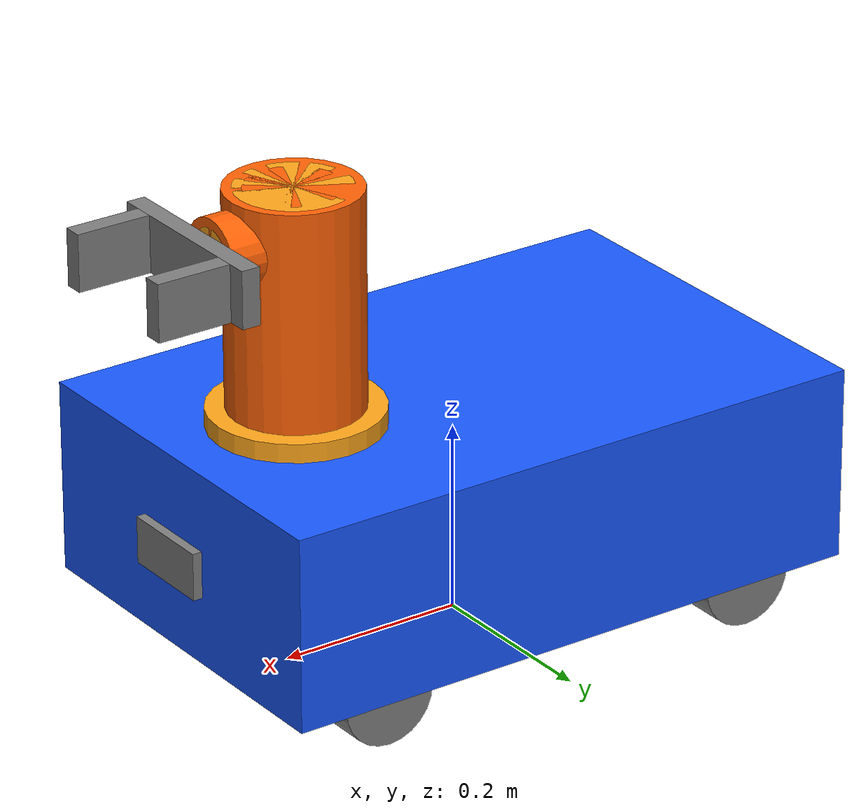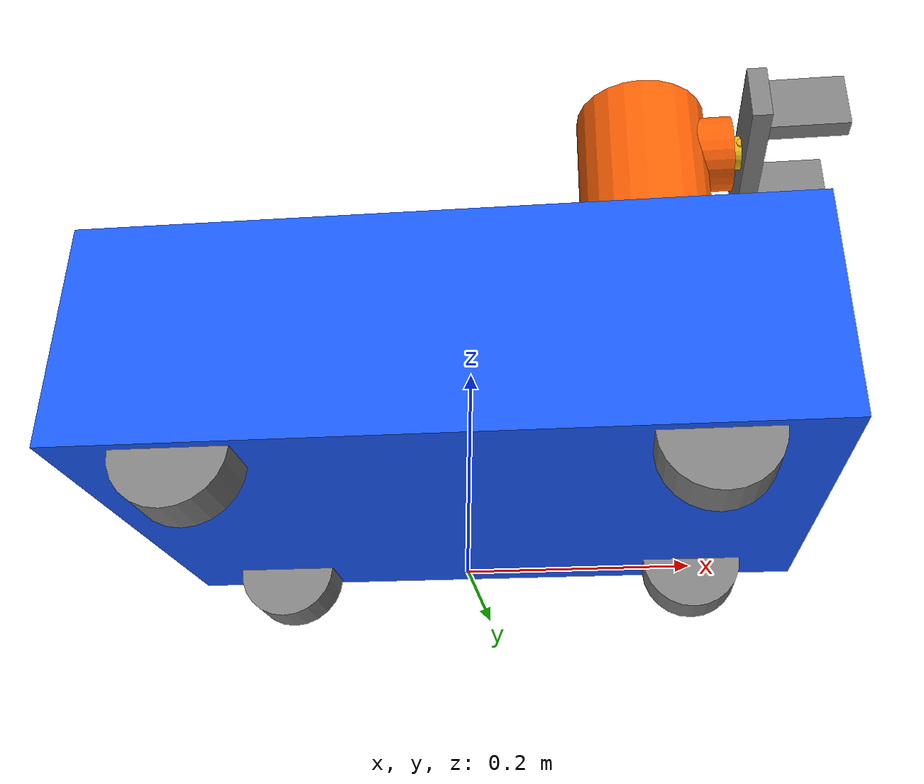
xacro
<?xml version="1.0"?>
<robot name="libot" xmlns:xacro="http://www.ros.org/wiki/xacro">

    <!-- 'common_properties' should come first so other files have access to it -->
    <xacro:include filename="common_properties.xacro" />
    <xacro:include filename="libot_base.xacro" />
    <xacro:include filename="libot_base_gazebo.xacro" />
    <xacro:include filename="camera.xacro" />
    <xacro:include filename="standalone_arm.urdf.xacro" />

    <joint name="libot_arm_base_joint" type="continuous">
        <parent link="base_link" />
        <child link="arm_base_link" />
        <origin xyz="${base_length / 3.5} 0 ${base_height}" rpy="0 0 0"/>
        <axis xyz="0 0 1" />
        <limit effort="100" velocity="100" />
        <dynamics friction="0.3" damping="0.3" />
    </joint>

</robot>

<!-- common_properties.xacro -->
<robot xmlns:xacro="http://www.ros.org/wiki/xacro">

    <material name="blue">
        <color rgba="0.10 0.35 1.0 1" /> <!-- r g b alpha -->
    </material>

    <material name="grey">
        <color rgba="0.5 0.5 0.5 1" /> <!-- r g b alpha -->
    </material>

    <material name="orange">
        <color rgba="1.00 0.38 0.02 1" /> <!-- r g b alpha -->
    </material>

    <material name="yellow">
        <color rgba="1.0 0.65 0.1  1" /> <!-- r g b alpha -->
    </material>

    <material name="greenish">
        <color rgba="0.9 0.75 0.1  1" /> <!-- r g b alpha -->
    </material>

    <xacro:macro name="box_inertia" params="m x y z o_xyz o_rpy">
        <inertial>
            <mass value="${m}" />
            <origin xyz="${o_xyz}" rpy="${o_rpy}" />
            <inertia ixx="${(m/12) * (y*y + z*z)}" ixy="0" ixz="0"
                     iyy="${(m/12) * (x*x + z*z)}" iyz="0"
                     izz="${(m/12) * (y*y + x*x)}" />
        </inertial>
    </xacro:macro>

    <xacro:macro name="cylinder_inertia" params="m r h o_xyz o_rpy">
        <inertial>
            <mass value="${m}" />
            <origin xyz="${o_xyz}" rpy="${o_rpy}" />
            <inertia ixx="${(m/12) * (3*r*r + h*h)}" ixy="0" ixz="0"
                     iyy="${(m/12) * (3*r*r + h*h)}" iyz="0"
                     izz="${(m/2) * (r*r)}" />
        </inertial>
    </xacro:macro>

    <xacro:macro name="sphere_inertia" params="m r o_xyz o_rpy">
        <inertial>
            <mass value="${m}" />
            <origin xyz="${o_xyz}" rpy="${o_rpy}" />
            <inertia ixx="${(2/5) * m * r*r}" ixy="0" ixz="0"
                     iyy="${(2/5) * m * r*r}" iyz="0"
                     izz="${(2/5) * m * r*r}" />
        </inertial>
    </xacro:macro>

</robot>

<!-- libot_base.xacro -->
<robot xmlns:xacro="http://www.ros.org/wiki/xacro">

    <!-- Body Variables -->
    <xacro:property name="base_length" value="0.65" />
    <xacro:property name="base_width" value="0.425" />
    <xacro:property name="base_height" value="0.205" />
    <xacro:property name="wheel_radius" value="0.05" />
    <xacro:property name="wheel_length" value="0.05" />
    <xacro:property name="caster_radius" value="${wheel_radius / 2.0}" />

    <!-- Link Definitions  -->
    <link name="base_footprint" />

    <link name="base_link">
        <visual>
            <geometry>
                <box size="${base_length} ${base_width} ${base_height}" />
            </geometry>
            <origin xyz="0 0 ${base_height / 2.0}" rpy="0 0 0" />
            <material name="blue" />
        </visual>
        <collision>
            <geometry>
                <box size="${base_length} ${base_width} ${base_height}" />
            </geometry>
            <origin xyz="0 0 ${base_height / 2.0}" rpy="0 0 0" />
        </collision>
        <xacro:box_inertia m="5.0" x="${base_length}" y="${base_width}" z="${base_height}"
                        o_xyz="0 0 ${base_height / 2.0}" o_rpy="0 0 0" />
    </link>

    <xacro:macro name="wheel_link" params="prefix">
        <link name="${prefix}_wheel_link">
            <visual>
                <geometry>
                    <cylinder radius="${wheel_radius}" length="${wheel_length}" />
                </geometry>
                <origin xyz="0 0 0" rpy="0 0 0" />
                <material name="grey" />
            </visual>
            <collision>
                <geometry>
                    <cylinder radius="${wheel_radius}" length="${wheel_length}"/>
                </geometry>
                <origin xyz="0 0 0" rpy="0 0 0" />
            </collision>
        <xacro:cylinder_inertia m="1.0" r="${wheel_radius}" h="${wheel_length}"
                        o_xyz="0 0 0" o_rpy="0 0 0" />
        </link>
    </xacro:macro>

    <xacro:wheel_link prefix="back_right" />
    <xacro:wheel_link prefix="back_left" />
    <xacro:wheel_link prefix="front_right" />
    <xacro:wheel_link prefix="front_left" />

    <!-- Joint Definitions -->
    <joint name="base_joint" type="fixed">
        <parent link="base_footprint" />
        <child link="base_link" />
        <origin xyz="0 0 ${wheel_radius}" rpy="0 0 0"/>
    </joint>

    <joint name="base_back_right_wheel_joint" type="continuous">
        <parent link="base_link" />
        <child link="back_right_wheel_link" />
        <origin xyz="${-base_length / 3.0} ${-(base_width - wheel_length - 0.02) / 2.0} 0" rpy="-${pi / 2.0} 0 0"/>
        <axis xyz="0 0 1" />
    </joint>

    <joint name="base_back_left_wheel_joint" type="continuous">
        <parent link="base_link" />
        <child link="back_left_wheel_link" />
        <origin xyz="${-base_length / 3.0} ${(base_width - wheel_length - 0.02) / 2.0} 0" rpy="-${pi / 2.0} 0 0"/>
        <axis xyz="0 0 1" />
    </joint>

    <joint name="base_front_right_wheel_joint" type="continuous">
        <parent link="base_link" />
        <child link="front_right_wheel_link" />
        <origin xyz="${base_length / 3.0} ${-(base_width - wheel_length - 0.02) / 2.0} 0" rpy="-${pi / 2.0} 0 0"/>
        <axis xyz="0 0 1" />
    </joint>

    <joint name="base_front_left_wheel_joint" type="continuous">
        <parent link="base_link" />
        <child link="front_left_wheel_link" />
        <origin xyz="${base_length / 3.0} ${(base_width - wheel_length - 0.02) / 2.0} 0" rpy="-${pi / 2.0} 0 0"/>
        <axis xyz="0 0 1" />
    </joint>

</robot>

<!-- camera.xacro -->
<robot xmlns:xacro="http://www.ros.org/wiki/xacro">

    <xacro:property name="camera_length" value="0.01" />
    <xacro:property name="camera_width" value="0.1" />
    <xacro:property name="camera_height" value="0.05" />

    <link name="camera_link">
        <visual>
            <geometry>
                <box size="${camera_length} ${camera_width} ${camera_height}" />
            </geometry>
            <origin xyz="${camera_length / 2.0} 0 0" rpy="0 0 0" />
            <material name="grey" />
        </visual>
        <collision>
            <geometry>
                <box size="${camera_length} ${camera_width} ${camera_height}" />
            </geometry>
        </collision>
        <xacro:box_inertia m="0.1" x="${camera_length}" y="${camera_width}" z="${camera_height}"
                        o_xyz="${camera_length / 2.0} 0 0" o_rpy="0 0 0" />
    </link>

    <link name="camera_link_optical">
    </link>

    <joint name="base_camera_joint" type="fixed">
        <parent link="base_link" />
        <child link="camera_link" />
        <origin xyz="${base_length / 2.0 + 0.005} 0 ${base_height / 2.0}" rpy="0 0 0"/>
    </joint>

    <!-- generate an optical frame
    http://www.ros.org/reps/rep-0103.html#suffix-frames
    so that ros and opencv can operate on the camera frame correctly
    -->
    <joint name="camera_optical_joint" type="fixed">
        <!-- these values have to be these values otherwise the gazebo camera
            image won't be aligned properly with the frame it is supposedly
            originating from -->
        <parent link="camera_link"/>
        <child link="camera_link_optical"/>
        <origin xyz="0 0 0" rpy="${-pi/2} 0 ${-pi/2}"/>
    </joint>

    <gazebo reference="camera_link">
        <sensor name="camera" type="camera">
            <camera>
                <horizontal_fov>1.3962634</horizontal_fov>
                <image>
                    <width>640</width>
                    <height>480</height>
                    <format>R8G8B8</format>
                </image>
                <clip>
                    <near>0.1</near>
                    <far>15</far>
                </clip>
                <noise>
                    <type>gaussian</type>
                    <mean>0.0</mean>
                    <stddev>0.007</stddev>
                </noise>
                <optical_frame_id>camera_link_optical</optical_frame_id>
                <camera_info_topic>camera/camera_info</camera_info_topic>
            </camera>
            <always_on>1</always_on>
            <update_rate>20</update_rate>
            <visualize>true</visualize>
            <topic>camera/image_raw</topic>
        </sensor>
    </gazebo>

</robot>

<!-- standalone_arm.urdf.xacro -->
<robot name="my_robot" xmlns:xacro="http://www.ros.org/wiki/xacro">

    <xacro:include filename="arm.xacro" />
    <xacro:include filename="arm_gazebo.xacro" />
    <xacro:include filename="gripper.xacro" />
    <xacro:include filename="gripper_gazebo.xacro" />

    <joint name="pitch_gripper_joint" type="fixed">
        <parent link="pitch_link" />
        <child link="gripper_base_link" />
        <origin xyz="0 0 0" rpy="0 0 ${pi/2}"/>
        <axis xyz="0 0 1" />
        <limit effort="100" velocity="100" />
        <dynamics friction="0.3" damping="0.3" />
    </joint>

</robot>

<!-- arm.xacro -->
<robot name="my_robot" xmlns:xacro="http://www.ros.org/wiki/xacro">

    <xacro:macro name="cylinder_link" params="name material radius length">
        <link name="${name}">
            <visual>
                <geometry>
                    <cylinder radius="${radius}" length="${length}" />
                </geometry>
                <origin xyz="0 0 ${length / 2.0}" rpy="0 0 0" />
                <material name="${material}" />
            </visual>
            <collision>
                <geometry>
                    <cylinder radius="${radius}" length="${length}"/>
                </geometry>
                <origin xyz="0 0 ${length / 2.0}" rpy="0 0 0" />
            </collision>
        <xacro:cylinder_inertia m="0.3" r="${radius}" h="${length}"
                        o_xyz="0 0 ${length / 2.0}" o_rpy="0 0 0" />
        </link>
    </xacro:macro>

    <xacro:cylinder_link name="arm_base_link" material="yellow" radius="0.09" length="0.02" />
    <xacro:cylinder_link name="vertical_prismatic_link1" material="orange" radius="0.07" length="0.35" />
    <xacro:cylinder_link name="vertical_prismatic_link2" material="yellow" radius="0.06" length="0.35" />
    <xacro:cylinder_link name="vertical_prismatic_link3" material="orange" radius="0.05" length="0.35" />

    <xacro:cylinder_link name="horizontal_prismatic_link1" material="orange" radius="0.04" length="0.125" />
    <xacro:cylinder_link name="horizontal_prismatic_link2" material="yellow" radius="0.03" length="0.125" />
    <xacro:cylinder_link name="horizontal_prismatic_link3" material="orange" radius="0.02" length="0.125" />
    <xacro:cylinder_link name="roll_link" material="greenish" radius="0.018" length="0.01" />

    <link name="pitch_link">
        <visual>
            <geometry>
                <cylinder radius="0.005" length="0.038" />
            </geometry>
            <origin xyz="0 0 0" rpy="${pi/2} 0 0" />
            <material name="yellow" />
        </visual>
        <collision>
            <geometry>
                <cylinder radius="0.005" length="0.038"/>
            </geometry>
            <origin xyz="0 0 0" rpy="${pi/2} 0 0" />
        </collision>
    <xacro:cylinder_inertia m="0.3" r="0.005" h="0.038"
                    o_xyz="0 0 0" o_rpy="${pi/2} 0 0" />
    </link>

    <joint name="arm_base_prismatic1_joint" type="fixed">
        <parent link="arm_base_link" />
        <child link="vertical_prismatic_link1" />
        <origin xyz="0 0 -0.1" rpy="0 0 0" />
        <axis xyz="0 0 1" />
    </joint>

    <joint name="vertical_prismatic1_2_joint" type="prismatic">
        <parent link="vertical_prismatic_link1" />
        <child link="vertical_prismatic_link2" />
        <origin xyz="0 0 0" rpy="0 0 0" />
        <axis xyz="0 0 1" />
        <limit lower="0" upper="0.35" effort="100" velocity="100" />
        <dynamics friction="0.3" damping="0.3" />
    </joint>

    <joint name="vertical_prismatic2_3_joint" type="prismatic">
        <parent link="vertical_prismatic_link2" />
        <child link="vertical_prismatic_link3" />
        <origin xyz="0 0 0" rpy="0 0 0" />
        <axis xyz="0 0 1" />
        <mimic joint="vertical_prismatic1_2_joint" multiplier="1" offset="0"/>
        <limit lower="0" upper="0.35" effort="100" velocity="100" />
        <dynamics friction="0.3" damping="0.3" />
    </joint>

    <joint name="horizontal_vertical_prismatic_joint" type="fixed">
        <parent link="vertical_prismatic_link3" />
        <child link="horizontal_prismatic_link1" />
        <origin xyz="-0.03 0 ${0.35 - 0.05}" rpy="0 ${pi/2} 0" />
    </joint>

    <joint name="horizontal_prismatic1_2_joint" type="prismatic">
        <parent link="horizontal_prismatic_link1" />
        <child link="horizontal_prismatic_link2" />
        <origin xyz="0 0 0" rpy="0 0 0" />
        <axis xyz="0 0 1" />
        <limit lower="0" upper="0.125" effort="100" velocity="100" />
        <dynamics friction="0.3" damping="0.3" />
    </joint>

    <joint name="horizontal_prismatic2_3_joint" type="prismatic">
        <parent link="horizontal_prismatic_link2" />
        <child link="horizontal_prismatic_link3" />
        <origin xyz="0 0 0" rpy="0 0 0" />
        <axis xyz="0 0 1" />
        <mimic joint="horizontal_prismatic1_2_joint" multiplier="1" offset="0"/>
        <limit lower="0" upper="0.1" effort="100" velocity="100" />
        <dynamics friction="0.3" damping="0.3" />
    </joint>

    <joint name="horizontal_prismatic3_roll_joint" type="continuous">
        <parent link="horizontal_prismatic_link3" />
        <child link="roll_link" />
        <origin xyz="0 0 0.125" rpy="0 0 0" />
        <axis xyz="0 0 1" />
        <limit effort="100" velocity="100" />
        <dynamics friction="0.3" damping="0.3" />
    </joint>

    <joint name="roll_pitch_joint" type="revolute">
        <parent link="roll_link" />
        <child link="pitch_link" />
        <origin xyz="0 0 0.01" rpy="0 0 0" />
        <axis xyz="0 1 0" />
        <limit lower="${-pi/2}" upper="${pi/2}" effort="100" velocity="100" />
        <dynamics friction="0.3" damping="0.3" />
    </joint>

</robot>

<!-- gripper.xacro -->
<robot xmlns:xacro="http://www.ros.org/wiki/xacro">

    <link name="gripper_base_link">
        <visual>
            <geometry>
                <box size="0.2 0.06 0.02"/>
            </geometry>
            <origin xyz="0 0 0.01" rpy="0 0 0"/>
            <material name="grey"/>
        </visual>
        <collision>
            <geometry>
                <box size="0.2 0.06 0.02"/>
            </geometry>
            <origin xyz="0 0 0.01" rpy="0 0 0"/>
        </collision>
        <xacro:box_inertia m="0.1" x="0.2" y="0.06" z="0.02"
                        o_xyz="0 0 0.01" o_rpy="0 0 0" />
    </link>

    <link name="gripper_left_finger_link">
        <visual>
            <geometry>
                <box size="0.02 0.06 0.08"/>
            </geometry>
            <origin xyz="0 0 0.04" rpy="0 0 0"/>
            <material name="grey"/>
        </visual>
        <collision>
            <geometry>
                <box size="0.02 0.06 0.08"/>
            </geometry>
            <origin xyz="0 0 0.04" rpy="0 0 0"/>
        </collision>
        <xacro:box_inertia m="0.1" x="0.02" y="0.06" z="0.08"
                        o_xyz="0 0 0.04" o_rpy="0 0 0" />
    </link>

    <joint name="gripper_left_finger_joint" type="prismatic">
        <parent link="gripper_base_link"/>
        <child link="gripper_left_finger_link"/>
        <origin xyz="-0.07 0 0.02" rpy="0 0 0"/>
        <axis xyz="1 0 0"/>
        <limit lower="0" upper="0.06" effort="1000.0" velocity="1.0"/>
        <dynamics damping="0.1" friction="0.1"/>
    </joint>

    <link name="gripper_right_finger_link">
        <visual>
            <geometry>
                <box size="0.02 0.06 0.08"/>
            </geometry>
            <origin xyz="0 0 0.04" rpy="0 0 0"/>
            <material name="grey"/>
        </visual>
        <collision>
            <geometry>
                <box size="0.02 0.06 0.08"/>
            </geometry>
            <origin xyz="0 0 0.04" rpy="0 0 0"/>
        </collision>
        <xacro:box_inertia m="0.1" x="0.02" y="0.06" z="0.08"
                        o_xyz="0 0 0.04" o_rpy="0 0 0" />
    </link>

    <joint name="gripper_right_finger_joint" type="prismatic">
        <parent link="gripper_base_link"/>
        <child link="gripper_right_finger_link"/>
        <origin xyz="0.07 0 0.02" rpy="0 0 0"/>
        <axis xyz="-1 0 0"/>
        <mimic joint="gripper_left_finger_joint" multiplier="1" offset="0"/>
        <limit lower="0.0" upper="0.06" effort="1000.0" velocity="1.0"/>
        <dynamics damping="0.1" friction="0.1"/>
    </joint>

</robot>
